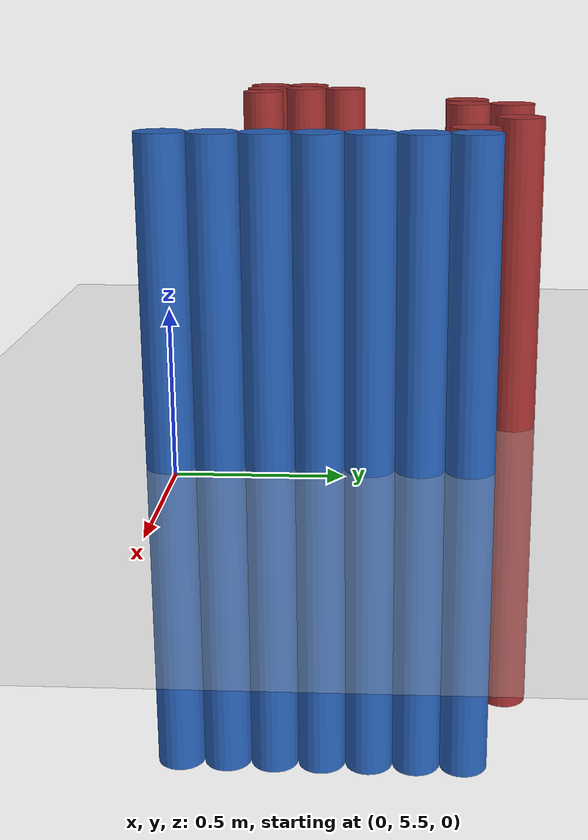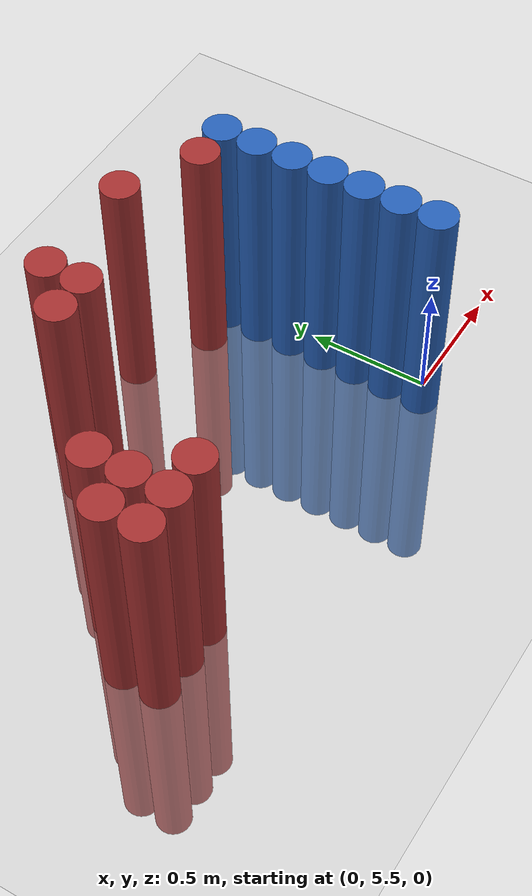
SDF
<sdf version="1.6">
 <world name="default">
  <model name="ground_plane">
   <static>1</static>
   <link name="link">
    <collision name="collision">
     <geometry><plane><normal>0 0 1</normal><size>100 100</size></plane></geometry>
     <surface><friction><ode><mu>100</mu><mu2>50</mu2></ode></friction></surface>
    </collision>
    <visual name="visual">
     <cast_shadows>0</cast_shadows>
     <geometry><plane><normal>0 0 1</normal><size>100 100</size></plane></geometry>
     <material>
      <script><uri>file://media/materials/scripts/gazebo.material</uri><name>Gazebo/Grey</name></script>
     </material>
    </visual>
   </link>
  </model>
  <model name="unit_cylinder_200">
   <static>1</static>
   <pose>-1.725000 5.625000 0.000000 0.000000 0.000000 0.000000</pose>
   <link name="link">
    <inertial>
     <mass>1</mass>
     <inertia><ixx>0.145833</ixx><ixy>0</ixy><ixz>0</ixz><iyy>0.145833</iyy><iyz>0</iyz><izz>0.125</izz></inertia>
    </inertial>
    <collision name="collision">
     <geometry><cylinder><radius>0.075000</radius><length>2</length></cylinder></geometry>
    </collision>
    <visual name="visual">
     <geometry><cylinder><radius>0.075000</radius><length>2</length></cylinder></geometry>
     <material>
      <ambient>0.648000 0.192000 0.192000 1</ambient>
      <diffuse>0.648000 0.192000 0.192000 1</diffuse>
     </material>
     <material>
      <script><name>Gazebo/Grey</name><uri>file://media/materials/scripts/gazebo.material</uri></script>
     </material>
    </visual>
   </link>
  </model>
  <model name="unit_cylinder_201">
   <static>1</static>
   <pose>-1.725000 5.775000 0.000000 0.000000 0.000000 0.000000</pose>
   <link name="link">
    <inertial>
     <mass>1</mass>
     <inertia><ixx>0.145833</ixx><ixy>0</ixy><ixz>0</ixz><iyy>0.145833</iyy><iyz>0</iyz><izz>0.125</izz></inertia>
    </inertial>
    <collision name="collision">
     <geometry><cylinder><radius>0.075000</radius><length>2</length></cylinder></geometry>
    </collision>
    <visual name="visual">
     <geometry><cylinder><radius>0.075000</radius><length>2</length></cylinder></geometry>
     <material>
      <ambient>0.648000 0.192000 0.192000 1</ambient>
      <diffuse>0.648000 0.192000 0.192000 1</diffuse>
     </material>
     <material>
      <script><name>Gazebo/Grey</name><uri>file://media/materials/scripts/gazebo.material</uri></script>
     </material>
    </visual>
   </link>
  </model>
  <model name="unit_cylinder_202">
   <static>1</static>
   <pose>-1.575000 5.625000 0.000000 0.000000 0.000000 0.000000</pose>
   <link name="link">
    <inertial>
     <mass>1</mass>
     <inertia><ixx>0.145833</ixx><ixy>0</ixy><ixz>0</ixz><iyy>0.145833</iyy><iyz>0</iyz><izz>0.125</izz></inertia>
    </inertial>
    <collision name="collision">
     <geometry><cylinder><radius>0.075000</radius><length>2</length></cylinder></geometry>
    </collision>
    <visual name="visual">
     <geometry><cylinder><radius>0.075000</radius><length>2</length></cylinder></geometry>
     <material>
      <ambient>0.648000 0.192000 0.192000 1</ambient>
      <diffuse>0.648000 0.192000 0.192000 1</diffuse>
     </material>
     <material>
      <script><name>Gazebo/Grey</name><uri>file://media/materials/scripts/gazebo.material</uri></script>
     </material>
    </visual>
   </link>
  </model>
  <model name="unit_cylinder_203">
   <static>1</static>
   <pose>-1.575000 5.775000 0.000000 0.000000 0.000000 0.000000</pose>
   <link name="link">
    <inertial>
     <mass>1</mass>
     <inertia><ixx>0.145833</ixx><ixy>0</ixy><ixz>0</ixz><iyy>0.145833</iyy><iyz>0</iyz><izz>0.125</izz></inertia>
    </inertial>
    <collision name="collision">
     <geometry><cylinder><radius>0.075000</radius><length>2</length></cylinder></geometry>
    </collision>
    <visual name="visual">
     <geometry><cylinder><radius>0.075000</radius><length>2</length></cylinder></geometry>
     <material>
      <ambient>0.648000 0.192000 0.192000 1</ambient>
      <diffuse>0.648000 0.192000 0.192000 1</diffuse>
     </material>
     <material>
      <script><name>Gazebo/Grey</name><uri>file://media/materials/scripts/gazebo.material</uri></script>
     </material>
    </visual>
   </link>
  </model>
  <model name="unit_cylinder_204">
   <static>1</static>
   <pose>-1.575000 5.925000 0.000000 0.000000 0.000000 0.000000</pose>
   <link name="link">
    <inertial>
     <mass>1</mass>
     <inertia><ixx>0.145833</ixx><ixy>0</ixy><ixz>0</ixz><iyy>0.145833</iyy><iyz>0</iyz><izz>0.125</izz></inertia>
    </inertial>
    <collision name="collision">
     <geometry><cylinder><radius>0.075000</radius><length>2</length></cylinder></geometry>
    </collision>
    <visual name="visual">
     <geometry><cylinder><radius>0.075000</radius><length>2</length></cylinder></geometry>
     <material>
      <ambient>0.648000 0.192000 0.192000 1</ambient>
      <diffuse>0.648000 0.192000 0.192000 1</diffuse>
     </material>
     <material>
      <script><name>Gazebo/Grey</name><uri>file://media/materials/scripts/gazebo.material</uri></script>
     </material>
    </visual>
   </link>
  </model>
  <model name="unit_cylinder_210">
   <static>1</static>
   <pose>-1.425000 5.625000 0.000000 0.000000 0.000000 0.000000</pose>
   <link name="link">
    <inertial>
     <mass>1</mass>
     <inertia><ixx>0.145833</ixx><ixy>0</ixy><ixz>0</ixz><iyy>0.145833</iyy><iyz>0</iyz><izz>0.125</izz></inertia>
    </inertial>
    <collision name="collision">
     <geometry><cylinder><radius>0.075000</radius><length>2</length></cylinder></geometry>
    </collision>
    <visual name="visual">
     <geometry><cylinder><radius>0.075000</radius><length>2</length></cylinder></geometry>
     <material>
      <ambient>0.648000 0.192000 0.192000 1</ambient>
      <diffuse>0.648000 0.192000 0.192000 1</diffuse>
     </material>
     <material>
      <script><name>Gazebo/Grey</name><uri>file://media/materials/scripts/gazebo.material</uri></script>
     </material>
    </visual>
   </link>
  </model>
  <model name="unit_cylinder_223">
   <static>1</static>
   <pose>-1.125000 6.375000 0.000000 0.000000 0.000000 0.000000</pose>
   <link name="link">
    <inertial>
     <mass>1</mass>
     <inertia><ixx>0.145833</ixx><ixy>0</ixy><ixz>0</ixz><iyy>0.145833</iyy><iyz>0</iyz><izz>0.125</izz></inertia>
    </inertial>
    <collision name="collision">
     <geometry><cylinder><radius>0.075000</radius><length>2</length></cylinder></geometry>
    </collision>
    <visual name="visual">
     <geometry><cylinder><radius>0.075000</radius><length>2</length></cylinder></geometry>
     <material>
      <ambient>0.648000 0.192000 0.192000 1</ambient>
      <diffuse>0.648000 0.192000 0.192000 1</diffuse>
     </material>
     <material>
      <script><name>Gazebo/Grey</name><uri>file://media/materials/scripts/gazebo.material</uri></script>
     </material>
    </visual>
   </link>
  </model>
  <model name="unit_cylinder_225">
   <static>1</static>
   <pose>-0.975000 6.375000 0.000000 0.000000 0.000000 0.000000</pose>
   <link name="link">
    <inertial>
     <mass>1</mass>
     <inertia><ixx>0.145833</ixx><ixy>0</ixy><ixz>0</ixz><iyy>0.145833</iyy><iyz>0</iyz><izz>0.125</izz></inertia>
    </inertial>
    <collision name="collision">
     <geometry><cylinder><radius>0.075000</radius><length>2</length></cylinder></geometry>
    </collision>
    <visual name="visual">
     <geometry><cylinder><radius>0.075000</radius><length>2</length></cylinder></geometry>
     <material>
      <ambient>0.648000 0.192000 0.192000 1</ambient>
      <diffuse>0.648000 0.192000 0.192000 1</diffuse>
     </material>
     <material>
      <script><name>Gazebo/Grey</name><uri>file://media/materials/scripts/gazebo.material</uri></script>
     </material>
    </visual>
   </link>
  </model>
  <model name="unit_cylinder_226">
   <static>1</static>
   <pose>-0.975000 6.525000 0.000000 0.000000 0.000000 0.000000</pose>
   <link name="link">
    <inertial>
     <mass>1</mass>
     <inertia><ixx>0.145833</ixx><ixy>0</ixy><ixz>0</ixz><iyy>0.145833</iyy><iyz>0</iyz><izz>0.125</izz></inertia>
    </inertial>
    <collision name="collision">
     <geometry><cylinder><radius>0.075000</radius><length>2</length></cylinder></geometry>
    </collision>
    <visual name="visual">
     <geometry><cylinder><radius>0.075000</radius><length>2</length></cylinder></geometry>
     <material>
      <ambient>0.648000 0.192000 0.192000 1</ambient>
      <diffuse>0.648000 0.192000 0.192000 1</diffuse>
     </material>
     <material>
      <script><name>Gazebo/Grey</name><uri>file://media/materials/scripts/gazebo.material</uri></script>
     </material>
    </visual>
   </link>
  </model>
  <model name="unit_cylinder_230">
   <static>1</static>
   <pose>-0.525000 6.525000 0.000000 0.000000 0.000000 0.000000</pose>
   <link name="link">
    <inertial>
     <mass>1</mass>
     <inertia><ixx>0.145833</ixx><ixy>0</ixy><ixz>0</ixz><iyy>0.145833</iyy><iyz>0</iyz><izz>0.125</izz></inertia>
    </inertial>
    <collision name="collision">
     <geometry><cylinder><radius>0.075000</radius><length>2</length></cylinder></geometry>
    </collision>
    <visual name="visual">
     <geometry><cylinder><radius>0.075000</radius><length>2</length></cylinder></geometry>
     <material>
      <ambient>0.648000 0.192000 0.192000 1</ambient>
      <diffuse>0.648000 0.192000 0.192000 1</diffuse>
     </material>
     <material>
      <script><name>Gazebo/Grey</name><uri>file://media/materials/scripts/gazebo.material</uri></script>
     </material>
    </visual>
   </link>
  </model>
  <model name="unit_cylinder_241">
   <static>1</static>
   <pose>-0.225000 6.375000 0.000000 0.000000 0.000000 0.000000</pose>
   <link name="link">
    <inertial>
     <mass>1</mass>
     <inertia><ixx>0.145833</ixx><ixy>0</ixy><ixz>0</ixz><iyy>0.145833</iyy><iyz>0</iyz><izz>0.125</izz></inertia>
    </inertial>
    <collision name="collision">
     <geometry><cylinder><radius>0.075000</radius><length>2</length></cylinder></geometry>
    </collision>
    <visual name="visual">
     <geometry><cylinder><radius>0.075000</radius><length>2</length></cylinder></geometry>
     <material>
      <ambient>0.648000 0.192000 0.192000 1</ambient>
      <diffuse>0.648000 0.192000 0.192000 1</diffuse>
     </material>
     <material>
      <script><name>Gazebo/Grey</name><uri>file://media/materials/scripts/gazebo.material</uri></script>
     </material>
    </visual>
   </link>
  </model>
  <model name="unit_cylinder_253">
   <static>1</static>
   <pose>-0.075000 5.475000 0.000000 0.000000 0.000000 0.000000</pose>
   <link name="link">
    <inertial>
     <mass>1</mass>
     <inertia><ixx>0.145833</ixx><ixy>0</ixy><ixz>0</ixz><iyy>0.145833</iyy><iyz>0</iyz><izz>0.125</izz></inertia>
    </inertial>
    <collision name="collision">
     <geometry><cylinder><radius>0.075000</radius><length>2</length></cylinder></geometry>
    </collision>
    <visual name="visual">
     <geometry><cylinder><radius>0.075000</radius><length>2</length></cylinder></geometry>
     <material>
      <ambient>0.152000 0.379000 0.720000 1</ambient>
      <diffuse>0.152000 0.379000 0.720000 1</diffuse>
     </material>
     <material>
      <script><name>Gazebo/Grey</name><uri>file://media/materials/scripts/gazebo.material</uri></script>
     </material>
    </visual>
   </link>
  </model>
  <model name="unit_cylinder_254">
   <static>1</static>
   <pose>-0.075000 5.625000 0.000000 0.000000 0.000000 0.000000</pose>
   <link name="link">
    <inertial>
     <mass>1</mass>
     <inertia><ixx>0.145833</ixx><ixy>0</ixy><ixz>0</ixz><iyy>0.145833</iyy><iyz>0</iyz><izz>0.125</izz></inertia>
    </inertial>
    <collision name="collision">
     <geometry><cylinder><radius>0.075000</radius><length>2</length></cylinder></geometry>
    </collision>
    <visual name="visual">
     <geometry><cylinder><radius>0.075000</radius><length>2</length></cylinder></geometry>
     <material>
      <ambient>0.152000 0.379000 0.720000 1</ambient>
      <diffuse>0.152000 0.379000 0.720000 1</diffuse>
     </material>
     <material>
      <script><name>Gazebo/Grey</name><uri>file://media/materials/scripts/gazebo.material</uri></script>
     </material>
    </visual>
   </link>
  </model>
  <model name="unit_cylinder_255">
   <static>1</static>
   <pose>-0.075000 5.775000 0.000000 0.000000 0.000000 0.000000</pose>
   <link name="link">
    <inertial>
     <mass>1</mass>
     <inertia><ixx>0.145833</ixx><ixy>0</ixy><ixz>0</ixz><iyy>0.145833</iyy><iyz>0</iyz><izz>0.125</izz></inertia>
    </inertial>
    <collision name="collision">
     <geometry><cylinder><radius>0.075000</radius><length>2</length></cylinder></geometry>
    </collision>
    <visual name="visual">
     <geometry><cylinder><radius>0.075000</radius><length>2</length></cylinder></geometry>
     <material>
      <ambient>0.152000 0.379000 0.720000 1</ambient>
      <diffuse>0.152000 0.379000 0.720000 1</diffuse>
     </material>
     <material>
      <script><name>Gazebo/Grey</name><uri>file://media/materials/scripts/gazebo.material</uri></script>
     </material>
    </visual>
   </link>
  </model>
  <model name="unit_cylinder_256">
   <static>1</static>
   <pose>-0.075000 5.925000 0.000000 0.000000 0.000000 0.000000</pose>
   <link name="link">
    <inertial>
     <mass>1</mass>
     <inertia><ixx>0.145833</ixx><ixy>0</ixy><ixz>0</ixz><iyy>0.145833</iyy><iyz>0</iyz><izz>0.125</izz></inertia>
    </inertial>
    <collision name="collision">
     <geometry><cylinder><radius>0.075000</radius><length>2</length></cylinder></geometry>
    </collision>
    <visual name="visual">
     <geometry><cylinder><radius>0.075000</radius><length>2</length></cylinder></geometry>
     <material>
      <ambient>0.152000 0.379000 0.720000 1</ambient>
      <diffuse>0.152000 0.379000 0.720000 1</diffuse>
     </material>
     <material>
      <script><name>Gazebo/Grey</name><uri>file://media/materials/scripts/gazebo.material</uri></script>
     </material>
    </visual>
   </link>
  </model>
  <model name="unit_cylinder_257">
   <static>1</static>
   <pose>-0.075000 6.075000 0.000000 0.000000 0.000000 0.000000</pose>
   <link name="link">
    <inertial>
     <mass>1</mass>
     <inertia><ixx>0.145833</ixx><ixy>0</ixy><ixz>0</ixz><iyy>0.145833</iyy><iyz>0</iyz><izz>0.125</izz></inertia>
    </inertial>
    <collision name="collision">
     <geometry><cylinder><radius>0.075000</radius><length>2</length></cylinder></geometry>
    </collision>
    <visual name="visual">
     <geometry><cylinder><radius>0.075000</radius><length>2</length></cylinder></geometry>
     <material>
      <ambient>0.152000 0.379000 0.720000 1</ambient>
      <diffuse>0.152000 0.379000 0.720000 1</diffuse>
     </material>
     <material>
      <script><name>Gazebo/Grey</name><uri>file://media/materials/scripts/gazebo.material</uri></script>
     </material>
    </visual>
   </link>
  </model>
  <model name="unit_cylinder_258">
   <static>1</static>
   <pose>-0.075000 6.225000 0.000000 0.000000 0.000000 0.000000</pose>
   <link name="link">
    <inertial>
     <mass>1</mass>
     <inertia><ixx>0.145833</ixx><ixy>0</ixy><ixz>0</ixz><iyy>0.145833</iyy><iyz>0</iyz><izz>0.125</izz></inertia>
    </inertial>
    <collision name="collision">
     <geometry><cylinder><radius>0.075000</radius><length>2</length></cylinder></geometry>
    </collision>
    <visual name="visual">
     <geometry><cylinder><radius>0.075000</radius><length>2</length></cylinder></geometry>
     <material>
      <ambient>0.152000 0.379000 0.720000 1</ambient>
      <diffuse>0.152000 0.379000 0.720000 1</diffuse>
     </material>
     <material>
      <script><name>Gazebo/Grey</name><uri>file://media/materials/scripts/gazebo.material</uri></script>
     </material>
    </visual>
   </link>
  </model>
  <model name="unit_cylinder_259">
   <static>1</static>
   <pose>-0.075000 6.375000 0.000000 0.000000 0.000000 0.000000</pose>
   <link name="link">
    <inertial>
     <mass>1</mass>
     <inertia><ixx>0.145833</ixx><ixy>0</ixy><ixz>0</ixz><iyy>0.145833</iyy><iyz>0</iyz><izz>0.125</izz></inertia>
    </inertial>
    <collision name="collision">
     <geometry><cylinder><radius>0.075000</radius><length>2</length></cylinder></geometry>
    </collision>
    <visual name="visual">
     <geometry><cylinder><radius>0.075000</radius><length>2</length></cylinder></geometry>
     <material>
      <ambient>0.152000 0.379000 0.720000 1</ambient>
      <diffuse>0.152000 0.379000 0.720000 1</diffuse>
     </material>
     <material>
      <script><name>Gazebo/Grey</name><uri>file://media/materials/scripts/gazebo.material</uri></script>
     </material>
    </visual>
   </link>
  </model>
 </world>
</sdf>
